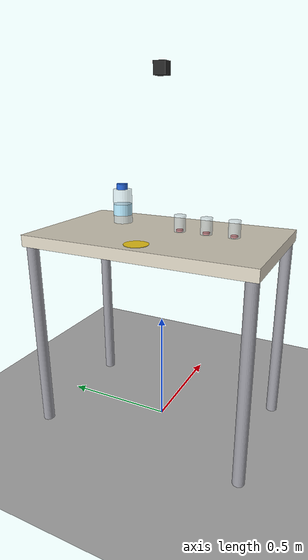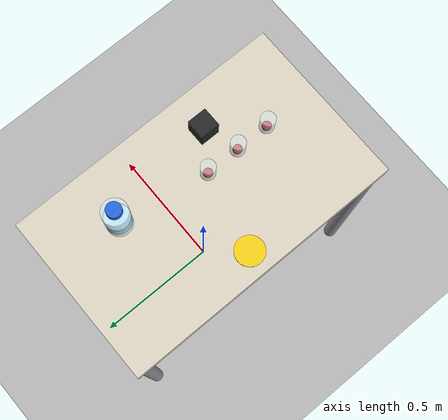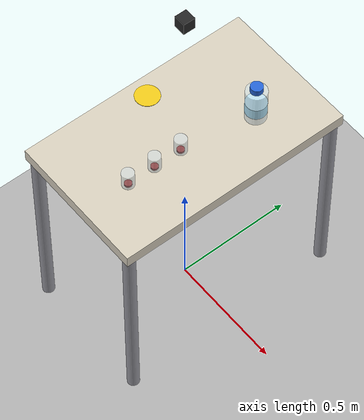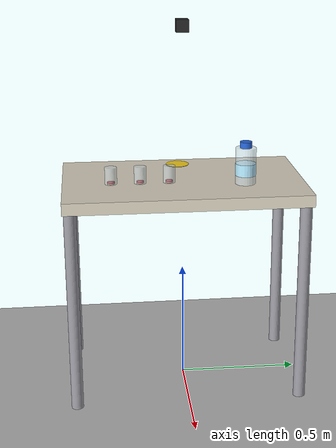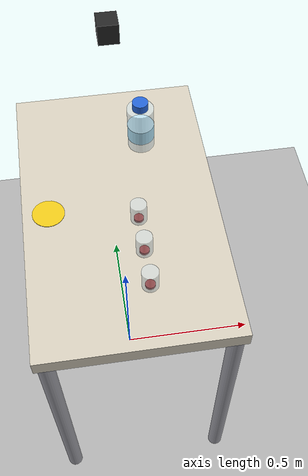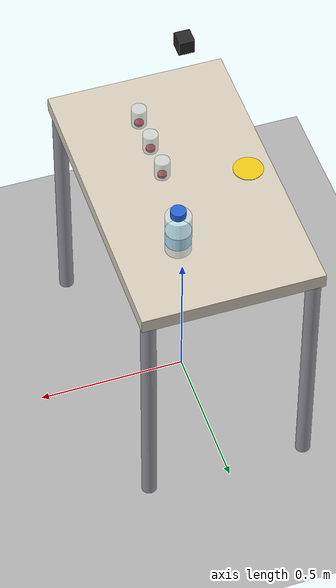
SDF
<?xml version="1.0" ?>
<sdf version="1.7">
  <world name="ketchup_extraction_cell">

    <light name="sun" type="directional">
      <cast_shadows>true</cast_shadows>
      <pose>0 0 10 0 0 0</pose>
      <diffuse>0.8 0.8 0.8 1</diffuse>
      <specular>0.2 0.2 0.2 1</specular>
      <attenuation>
        <range>1000</range>
        <constant>0.9</constant>
        <linear>0.01</linear>
        <quadratic>0.001</quadratic>
      </attenuation>
      <direction>-0.5 0.1 -0.9</direction>
    </light>

    <model name="ground_plane">
      <static>true</static>
      <link name="link">
        <collision name="c">
          <geometry>
            <plane>
              <normal>0 0 1</normal>
              <size>100 100</size>
            </plane>
          </geometry>
        </collision>
        <visual name="v">
          <geometry>
            <plane>
              <normal>0 0 1</normal>
              <size>100 100</size>
            </plane>
          </geometry>
          <material>
            <ambient>0.60 0.60 0.60 1</ambient>
            <diffuse>0.70 0.70 0.70 1</diffuse>
          </material>
        </visual>
      </link>
    </model>

    <model name="bench">
      <static>true</static>
      <pose>0 0 0 0 0 0</pose>
      <link name="link">
        <!-- Top slab. -->
        <visual name="top">
          <pose>0 0 0.875 0 0 0</pose>
          <geometry><box><size>0.60 1.00 0.05</size></box></geometry>
          <material>
            <ambient>0.85 0.82 0.75 1</ambient>
            <diffuse>0.85 0.82 0.75 1</diffuse>
          </material>
        </visual>
        <collision name="top_c">
          <pose>0 0 0.875 0 0 0</pose>
          <geometry><box><size>0.60 1.00 0.05</size></box></geometry>
        </collision>
        <!-- 4 stainless legs, Ø50 mm x 850 mm, inset 30 mm from
             each corner. Centred at z = 0.425 (ground to bench
             bottom). -->
        <visual name="leg_fr">
          <pose>0.27 -0.47 0.425 0 0 0</pose>
          <geometry><cylinder><radius>0.025</radius><length>0.850</length></cylinder></geometry>
          <material>
            <ambient>0.45 0.45 0.48 1</ambient>
            <diffuse>0.60 0.60 0.63 1</diffuse>
          </material>
        </visual>
        <collision name="leg_fr_c">
          <pose>0.27 -0.47 0.425 0 0 0</pose>
          <geometry><cylinder><radius>0.025</radius><length>0.850</length></cylinder></geometry>
        </collision>
        <visual name="leg_fl">
          <pose>0.27 0.47 0.425 0 0 0</pose>
          <geometry><cylinder><radius>0.025</radius><length>0.850</length></cylinder></geometry>
          <material>
            <ambient>0.45 0.45 0.48 1</ambient>
            <diffuse>0.60 0.60 0.63 1</diffuse>
          </material>
        </visual>
        <collision name="leg_fl_c">
          <pose>0.27 0.47 0.425 0 0 0</pose>
          <geometry><cylinder><radius>0.025</radius><length>0.850</length></cylinder></geometry>
        </collision>
        <visual name="leg_br">
          <pose>-0.27 -0.47 0.425 0 0 0</pose>
          <geometry><cylinder><radius>0.025</radius><length>0.850</length></cylinder></geometry>
          <material>
            <ambient>0.45 0.45 0.48 1</ambient>
            <diffuse>0.60 0.60 0.63 1</diffuse>
          </material>
        </visual>
        <collision name="leg_br_c">
          <pose>-0.27 -0.47 0.425 0 0 0</pose>
          <geometry><cylinder><radius>0.025</radius><length>0.850</length></cylinder></geometry>
        </collision>
        <visual name="leg_bl">
          <pose>-0.27 0.47 0.425 0 0 0</pose>
          <geometry><cylinder><radius>0.025</radius><length>0.850</length></cylinder></geometry>
          <material>
            <ambient>0.45 0.45 0.48 1</ambient>
            <diffuse>0.60 0.60 0.63 1</diffuse>
          </material>
        </visual>
        <collision name="leg_bl_c">
          <pose>-0.27 0.47 0.425 0 0 0</pose>
          <geometry><cylinder><radius>0.025</radius><length>0.850</length></cylinder></geometry>
        </collision>
      </link>
    </model>

    <model name="arm_base_marker">
      <static>true</static>
      <pose>-0.22 0.00 0.901 0 0 0</pose>
      <link name="disc">
        <visual name="v">
          <geometry><cylinder><radius>0.05</radius><length>0.002</length></cylinder></geometry>
          <material>
            <ambient>0.95 0.80 0.10 1</ambient>
            <diffuse>0.95 0.80 0.10 1</diffuse>
          </material>
        </visual>
      </link>
    </model>

    <model name="beaker_1">
      <pose>0.05 -0.30 0.935 0 0 0</pose>
      <link name="link">
        <inertial>
          <mass>0.080</mass>
          <inertia>
            <ixx>4.5e-5</ixx><iyy>4.5e-5</iyy><izz>2.5e-5</izz>
            <ixy>0</ixy><ixz>0</ixz><iyz>0</iyz>
          </inertia>
        </inertial>
        <visual name="glass">
          <geometry><cylinder><radius>0.025</radius><length>0.070</length></cylinder></geometry>
          <material>
            <ambient>0.85 0.90 0.92 0.55</ambient>
            <diffuse>0.85 0.90 0.92 0.55</diffuse>
          </material>
        </visual>
        <visual name="ketchup_sample">
          <pose>0 0 -0.031 0 0 0</pose>
          <geometry><cylinder><radius>0.015</radius><length>0.008</length></cylinder></geometry>
          <material>
            <ambient>0.55 0.05 0.05 1</ambient>
            <diffuse>0.70 0.08 0.08 1</diffuse>
          </material>
        </visual>
        <collision name="c">
          <geometry><cylinder><radius>0.025</radius><length>0.070</length></cylinder></geometry>
        </collision>
      </link>
    </model>

    <model name="beaker_2">
      <pose>0.05 -0.18 0.935 0 0 0</pose>
      <link name="link">
        <inertial>
          <mass>0.080</mass>
          <inertia>
            <ixx>4.5e-5</ixx><iyy>4.5e-5</iyy><izz>2.5e-5</izz>
            <ixy>0</ixy><ixz>0</ixz><iyz>0</iyz>
          </inertia>
        </inertial>
        <visual name="glass">
          <geometry><cylinder><radius>0.025</radius><length>0.070</length></cylinder></geometry>
          <material>
            <ambient>0.85 0.90 0.92 0.55</ambient>
            <diffuse>0.85 0.90 0.92 0.55</diffuse>
          </material>
        </visual>
        <visual name="ketchup_sample">
          <pose>0 0 -0.031 0 0 0</pose>
          <geometry><cylinder><radius>0.015</radius><length>0.008</length></cylinder></geometry>
          <material>
            <ambient>0.55 0.05 0.05 1</ambient>
            <diffuse>0.70 0.08 0.08 1</diffuse>
          </material>
        </visual>
        <collision name="c">
          <geometry><cylinder><radius>0.025</radius><length>0.070</length></cylinder></geometry>
        </collision>
      </link>
    </model>

    <model name="beaker_3">
      <pose>0.05 -0.06 0.935 0 0 0</pose>
      <link name="link">
        <inertial>
          <mass>0.080</mass>
          <inertia>
            <ixx>4.5e-5</ixx><iyy>4.5e-5</iyy><izz>2.5e-5</izz>
            <ixy>0</ixy><ixz>0</ixz><iyz>0</iyz>
          </inertia>
        </inertial>
        <visual name="glass">
          <geometry><cylinder><radius>0.025</radius><length>0.070</length></cylinder></geometry>
          <material>
            <ambient>0.85 0.90 0.92 0.55</ambient>
            <diffuse>0.85 0.90 0.92 0.55</diffuse>
          </material>
        </visual>
        <visual name="ketchup_sample">
          <pose>0 0 -0.031 0 0 0</pose>
          <geometry><cylinder><radius>0.015</radius><length>0.008</length></cylinder></geometry>
          <material>
            <ambient>0.55 0.05 0.05 1</ambient>
            <diffuse>0.70 0.08 0.08 1</diffuse>
          </material>
        </visual>
        <collision name="c">
          <geometry><cylinder><radius>0.025</radius><length>0.070</length></cylinder></geometry>
        </collision>
      </link>
    </model>

    <model name="solvent_bottle">
      <pose>0.10 0.25 0.975 0 0 0</pose>
      <link name="link">
        <inertial>
          <mass>0.700</mass>
          <inertia>
            <ixx>1.8e-3</ixx><iyy>1.8e-3</iyy><izz>6.3e-4</izz>
            <ixy>0</ixy><ixz>0</ixz><iyz>0</iyz>
          </inertia>
        </inertial>
        <visual name="body">
          <geometry><cylinder><radius>0.0425</radius><length>0.150</length></cylinder></geometry>
          <material>
            <ambient>0.85 0.92 0.95 0.55</ambient>
            <diffuse>0.85 0.92 0.95 0.55</diffuse>
          </material>
        </visual>
        <visual name="water">
          <pose>0 0 -0.015 0 0 0</pose>
          <geometry><cylinder><radius>0.040</radius><length>0.120</length></cylinder></geometry>
          <material>
            <ambient>0.55 0.75 0.92 0.70</ambient>
            <diffuse>0.65 0.85 0.97 0.70</diffuse>
          </material>
        </visual>
        <visual name="cap">
          <pose>0 0 0.0875 0 0 0</pose>
          <geometry><cylinder><radius>0.025</radius><length>0.025</length></cylinder></geometry>
          <material>
            <ambient>0.10 0.30 0.70 1</ambient>
            <diffuse>0.15 0.40 0.85 1</diffuse>
          </material>
        </visual>
        <visual name="label">
          <pose>0 0 -0.015 0 0 0</pose>
          <geometry><cylinder><radius>0.0426</radius><length>0.050</length></cylinder></geometry>
          <material>
            <ambient>0.65 0.85 0.95 1</ambient>
            <diffuse>0.70 0.90 0.98 1</diffuse>
          </material>
        </visual>
        <collision name="c">
          <geometry><cylinder><radius>0.0425</radius><length>0.175</length></cylinder></geometry>
        </collision>
      </link>
    </model>

    <model name="overhead_camera">
      <static>true</static>
      <pose>0 0 1.5 0 1.5708 0</pose>
      <link name="optical_frame">
        <visual name="body">
          <pose>-0.03 0 0 0 0 0</pose>
          <geometry><box><size>0.05 0.05 0.05</size></box></geometry>
          <material>
            <ambient>0.10 0.10 0.10 1</ambient>
            <diffuse>0.15 0.15 0.15 1</diffuse>
          </material>
        </visual>
        <sensor name="overhead_cam" type="camera">
          <always_on>1</always_on>
          <!-- 2 Hz: enough that move_camera.py gets a fresh
               post-teleport frame within its 2 s dwell, without
               flooding the topic with frames nobody wants. -->
          <update_rate>2</update_rate>
          <topic>overhead_camera/image_raw</topic>
          <camera>
            <horizontal_fov>1.0472</horizontal_fov>
            <image>
              <width>640</width>
              <height>480</height>
              <format>R8G8B8</format>
            </image>
            <clip>
              <near>0.05</near>
              <far>3.0</far>
            </clip>
          </camera>
        </sensor>
      </link>
    </model>

    <plugin filename="gz-sim-physics-system"
            name="gz::sim::systems::Physics">
    </plugin>
    <plugin filename="gz-sim-user-commands-system"
            name="gz::sim::systems::UserCommands">
    </plugin>
    <plugin filename="gz-sim-scene-broadcaster-system"
            name="gz::sim::systems::SceneBroadcaster">
    </plugin>
    <plugin filename="gz-sim-sensors-system"
            name="gz::sim::systems::Sensors">
      <render_engine>ogre2</render_engine>
    </plugin>

  </world>
</sdf>
